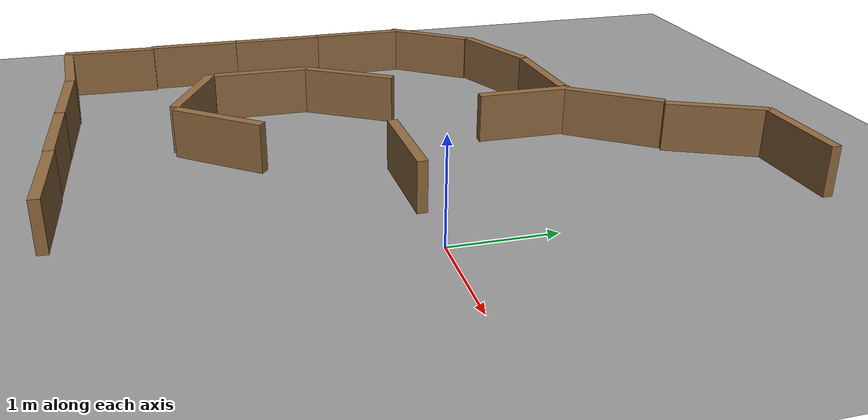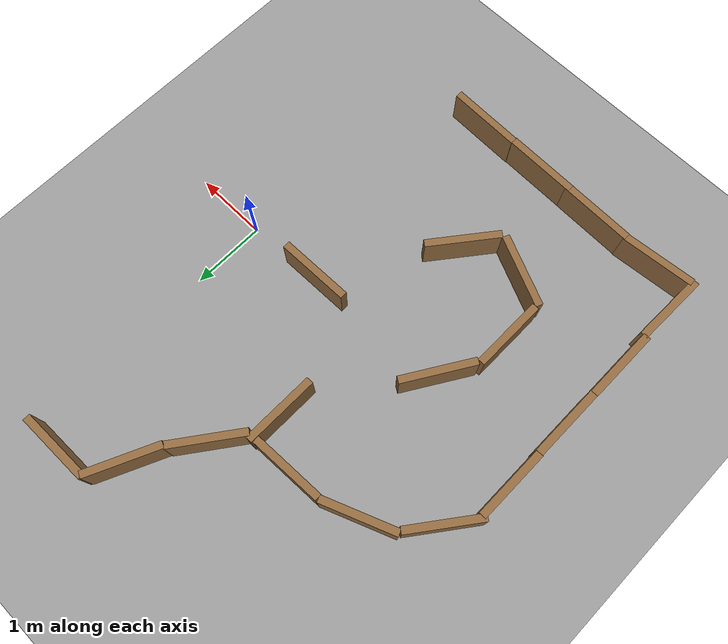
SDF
<sdf version="1.6">
 <world name="default">
  <model name="ground_plane_0">
   <static>1</static>
   <link name="link">
    <collision name="collision">
     <geometry><plane><normal>0 0 1</normal><size>100 100</size></plane></geometry>
     <surface><friction><ode><mu>100</mu><mu2>50</mu2></ode></friction></surface>
    </collision>
    <visual name="visual">
     <cast_shadows>0</cast_shadows>
     <geometry><plane><normal>0 0 1</normal><size>100 100</size></plane></geometry>
     <material>
      <script><uri>file://media/materials/scripts/gazebo.material</uri><name>Gazebo/Grey</name></script>
     </material>
    </visual>
    <velocity_decay><linear>0</linear><angular>0</angular></velocity_decay>
   </link>
   <pose>-1 0 0 0 -0 0</pose>
  </model>
  <model name="mascor_pappTown_wall_0">
   <pose>-3.38923 -1.10792 0 0 -0 0</pose>
   <static>1</static>
   <link name="link">
    <pose>0 0 0.25 0 -0 0</pose>
    <collision name="collision"><geometry><box><size>0.1 1 0.5</size></box></geometry></collision>
    <visual name="visual">
     <geometry><box><size>0.1 1 0.5</size></box></geometry>
     <material>
      <ambient>0.5 0.5 0.5 1</ambient>
      <diffuse>0.57 0.417 0.25 1</diffuse>
      <specular>0.1 0.1 0.1 1</specular>
      <emissive>0 0 0 0</emissive>
     </material>
    </visual>
    <velocity_decay><linear>0</linear><angular>0</angular></velocity_decay>
   </link>
  </model>
  <model name="mascor_pappTown_wall_3">
   <pose>-2.14455 -1.64991 0 0 0 -0.661636</pose>
   <static>1</static>
   <link name="link">
    <pose>0 0 0.25 0 -0 0</pose>
    <collision name="collision"><geometry><box><size>0.1 1 0.5</size></box></geometry></collision>
    <visual name="visual">
     <geometry><box><size>0.1 1 0.5</size></box></geometry>
     <material>
      <ambient>0.5 0.5 0.5 1</ambient>
      <diffuse>0.57 0.417 0.25 1</diffuse>
      <specular>0.1 0.1 0.1 1</specular>
      <emissive>0 0 0 0</emissive>
     </material>
    </visual>
    <velocity_decay><linear>0</linear><angular>0</angular></velocity_decay>
   </link>
  </model>
  <model name="mascor_pappTown_wall_8">
   <pose>-2.08917 1.48798 0 0 -0 0</pose>
   <static>1</static>
   <link name="link">
    <pose>0 0 0.25 0 -0 0</pose>
    <collision name="collision"><geometry><box><size>0.1 1 0.5</size></box></geometry></collision>
    <visual name="visual">
     <geometry><box><size>0.1 1 0.5</size></box></geometry>
     <material>
      <ambient>0.5 0.5 0.5 1</ambient>
      <diffuse>0.57 0.417 0.25 1</diffuse>
      <specular>0.1 0.1 0.1 1</specular>
      <emissive>0 0 0 0</emissive>
     </material>
    </visual>
    <velocity_decay><linear>0</linear><angular>0</angular></velocity_decay>
   </link>
  </model>
  <model name="mascor_pappTown_wall_10">
   <pose>-1.73538 2.3185 0.013799 0 -0 2.51064</pose>
   <static>1</static>
   <link name="link">
    <pose>0 0 0.25 0 -0 0</pose>
    <collision name="collision"><geometry><box><size>0.1 1 0.5</size></box></geometry></collision>
    <visual name="visual">
     <geometry><box><size>0.1 1 0.5</size></box></geometry>
     <material>
      <ambient>0.5 0.5 0.5 1</ambient>
      <diffuse>0.57 0.417 0.25 1</diffuse>
      <specular>0.1 0.1 0.1 1</specular>
      <emissive>0 0 0 0</emissive>
     </material>
    </visual>
    <velocity_decay><linear>0</linear><angular>0</angular></velocity_decay>
   </link>
  </model>
  <model name="mascor_pappTown_wall_16">
   <pose>-1.11387 -0.035453 0.008215 0 -0 1.59736</pose>
   <static>1</static>
   <link name="link">
    <pose>0 0 0.25 0 -0 0</pose>
    <collision name="collision"><geometry><box><size>0.1 1 0.5</size></box></geometry></collision>
    <visual name="visual">
     <geometry><box><size>0.1 1 0.5</size></box></geometry>
     <material>
      <ambient>0.5 0.5 0.5 1</ambient>
      <diffuse>0.57 0.417 0.25 1</diffuse>
      <specular>0.1 0.1 0.1 1</specular>
      <emissive>0 0 0 0</emissive>
     </material>
    </visual>
    <velocity_decay><linear>0</linear><angular>0</angular></velocity_decay>
   </link>
  </model>
  <model name="mascor_pappTown_wall_19">
   <pose>-3.09462 -0.17214 0.008101 0 -0 2.58907</pose>
   <static>1</static>
   <link name="link">
    <pose>0 0 0.25 0 -0 0</pose>
    <collision name="collision"><geometry><box><size>0.1 1 0.5</size></box></geometry></collision>
    <visual name="visual">
     <geometry><box><size>0.1 1 0.5</size></box></geometry>
     <material>
      <ambient>0.5 0.5 0.5 1</ambient>
      <diffuse>0.57 0.417 0.25 1</diffuse>
      <specular>0.1 0.1 0.1 1</specular>
      <emissive>0 0 0 0</emissive>
     </material>
    </visual>
    <velocity_decay><linear>0</linear><angular>0</angular></velocity_decay>
   </link>
  </model>
  <model name="mascor_pappTown_wall_35">
   <pose>-0.538394 3.62858 0 0 -0 1.59173</pose>
   <static>1</static>
   <link name="link">
    <pose>0 0 0.25 0 -0 0</pose>
    <collision name="collision"><geometry><box><size>0.1 1 0.5</size></box></geometry></collision>
    <visual name="visual">
     <geometry><box><size>0.1 1 0.5</size></box></geometry>
     <material>
      <ambient>0.5 0.5 0.5 1</ambient>
      <diffuse>0.57 0.417 0.25 1</diffuse>
      <specular>0.1 0.1 0.1 1</specular>
      <emissive>0 0 0 0</emissive>
     </material>
    </visual>
    <velocity_decay><linear>0</linear><angular>0</angular></velocity_decay>
   </link>
  </model>
  <model name="mascor_pappTown_wall_37">
   <pose>-1.21688 3.17387 0 0 0 -0.429197</pose>
   <static>1</static>
   <link name="link">
    <pose>0 0 0.25 0 -0 0</pose>
    <collision name="collision"><geometry><box><size>0.1 1 0.5</size></box></geometry></collision>
    <visual name="visual">
     <geometry><box><size>0.1 1 0.5</size></box></geometry>
     <material>
      <ambient>0.5 0.5 0.5 1</ambient>
      <diffuse>0.57 0.417 0.25 1</diffuse>
      <specular>0.1 0.1 0.1 1</specular>
      <emissive>0 0 0 0</emissive>
     </material>
    </visual>
    <velocity_decay><linear>0</linear><angular>0</angular></velocity_decay>
   </link>
  </model>
  <model name="mascor_pappTown_wall_40">
   <pose>-2.64508 1.89975 0 0 -0 1.61575</pose>
   <static>1</static>
   <link name="link">
    <pose>0 0 0.25 0 -0 0</pose>
    <collision name="collision"><geometry><box><size>0.1 1 0.5</size></box></geometry></collision>
    <visual name="visual">
     <geometry><box><size>0.1 1 0.5</size></box></geometry>
     <material>
      <ambient>0.5 0.5 0.5 1</ambient>
      <diffuse>0.57 0.417 0.25 1</diffuse>
      <specular>0.1 0.1 0.1 1</specular>
      <emissive>0 0 0 0</emissive>
     </material>
    </visual>
    <velocity_decay><linear>0</linear><angular>0</angular></velocity_decay>
   </link>
  </model>
  <model name="mascor_pappTown_wall_41">
   <pose>-3.61597 1.69455 0 0 0 -1.18272</pose>
   <static>1</static>
   <link name="link">
    <pose>0 0 0.25 0 -0 0</pose>
    <collision name="collision"><geometry><box><size>0.1 1 0.5</size></box></geometry></collision>
    <visual name="visual">
     <geometry><box><size>0.1 1 0.5</size></box></geometry>
     <material>
      <ambient>0.5 0.5 0.5 1</ambient>
      <diffuse>0.57 0.417 0.25 1</diffuse>
      <specular>0.1 0.1 0.1 1</specular>
      <emissive>0 0 0 0</emissive>
     </material>
    </visual>
    <velocity_decay><linear>0</linear><angular>0</angular></velocity_decay>
   </link>
  </model>
  <model name="mascor_pappTown_wall_42">
   <pose>-2.95823 -1.84805 0 0 -0 1.1539</pose>
   <static>1</static>
   <link name="link">
    <pose>0 0 0.25 0 -0 0</pose>
    <collision name="collision"><geometry><box><size>0.1 1 0.5</size></box></geometry></collision>
    <visual name="visual">
     <geometry><box><size>0.1 1 0.5</size></box></geometry>
     <material>
      <ambient>0.5 0.5 0.5 1</ambient>
      <diffuse>0.57 0.417 0.25 1</diffuse>
      <specular>0.1 0.1 0.1 1</specular>
      <emissive>0 0 0 0</emissive>
     </material>
    </visual>
    <velocity_decay><linear>0</linear><angular>0</angular></velocity_decay>
   </link>
  </model>
  <model name="mascor_pappTown_wall_43">
   <pose>-4.36547 1.08024 0 0 0 -0.644031</pose>
   <static>1</static>
   <link name="link">
    <pose>0 0 0.25 0 -0 0</pose>
    <collision name="collision"><geometry><box><size>0.1 1 0.5</size></box></geometry></collision>
    <visual name="visual">
     <geometry><box><size>0.1 1 0.5</size></box></geometry>
     <material>
      <ambient>0.5 0.5 0.5 1</ambient>
      <diffuse>0.57 0.417 0.25 1</diffuse>
      <specular>0.1 0.1 0.1 1</specular>
      <emissive>0 0 0 0</emissive>
     </material>
    </visual>
    <velocity_decay><linear>0</linear><angular>0</angular></velocity_decay>
   </link>
  </model>
  <model name="mascor_pappTown_wall_44">
   <pose>-4.61034 0.21432 0 0 -0 0</pose>
   <static>1</static>
   <link name="link">
    <pose>0 0 0.25 0 -0 0</pose>
    <collision name="collision"><geometry><box><size>0.1 1 0.5</size></box></geometry></collision>
    <visual name="visual">
     <geometry><box><size>0.1 1 0.5</size></box></geometry>
     <material>
      <ambient>0.5 0.5 0.5 1</ambient>
      <diffuse>0.57 0.417 0.25 1</diffuse>
      <specular>0.1 0.1 0.1 1</specular>
      <emissive>0 0 0 0</emissive>
     </material>
    </visual>
    <velocity_decay><linear>0</linear><angular>0</angular></velocity_decay>
   </link>
  </model>
  <model name="mascor_pappTown_wall_45">
   <pose>-4.60138 -0.778103 0 0 -0 0</pose>
   <static>1</static>
   <link name="link">
    <pose>0 0 0.25 0 -0 0</pose>
    <collision name="collision"><geometry><box><size>0.1 1 0.5</size></box></geometry></collision>
    <visual name="visual">
     <geometry><box><size>0.1 1 0.5</size></box></geometry>
     <material>
      <ambient>0.5 0.5 0.5 1</ambient>
      <diffuse>0.57 0.417 0.25 1</diffuse>
      <specular>0.1 0.1 0.1 1</specular>
      <emissive>0 0 0 0</emissive>
     </material>
    </visual>
    <velocity_decay><linear>0</linear><angular>0</angular></velocity_decay>
   </link>
  </model>
  <model name="mascor_pappTown_wall_46">
   <pose>-4.60548 -1.76727 0 0 -0 0</pose>
   <static>1</static>
   <link name="link">
    <pose>0 0 0.25 0 -0 0</pose>
    <collision name="collision"><geometry><box><size>0.1 1 0.5</size></box></geometry></collision>
    <visual name="visual">
     <geometry><box><size>0.1 1 0.5</size></box></geometry>
     <material>
      <ambient>0.5 0.5 0.5 1</ambient>
      <diffuse>0.57 0.417 0.25 1</diffuse>
      <specular>0.1 0.1 0.1 1</specular>
      <emissive>0 0 0 0</emissive>
     </material>
    </visual>
    <velocity_decay><linear>0</linear><angular>0</angular></velocity_decay>
   </link>
  </model>
  <model name="mascor_pappTown_wall_47">
   <pose>-4.5802 -2.74498 0 0 0 -0.024574</pose>
   <static>1</static>
   <link name="link">
    <pose>0 0 0.25 0 -0 0</pose>
    <collision name="collision"><geometry><box><size>0.1 1 0.5</size></box></geometry></collision>
    <visual name="visual">
     <geometry><box><size>0.1 1 0.5</size></box></geometry>
     <material>
      <ambient>0.5 0.5 0.5 1</ambient>
      <diffuse>0.57 0.417 0.25 1</diffuse>
      <specular>0.1 0.1 0.1 1</specular>
      <emissive>0 0 0 0</emissive>
     </material>
    </visual>
    <velocity_decay><linear>0</linear><angular>0</angular></velocity_decay>
   </link>
  </model>
  <model name="mascor_pappTown_wall_48">
   <pose>-4.07159 -3.15831 0 0 -0 1.66857</pose>
   <static>1</static>
   <link name="link">
    <pose>0 0 0.25 0 -0 0</pose>
    <collision name="collision"><geometry><box><size>0.1 1 0.5</size></box></geometry></collision>
    <visual name="visual">
     <geometry><box><size>0.1 1 0.5</size></box></geometry>
     <material>
      <ambient>0.5 0.5 0.5 1</ambient>
      <diffuse>0.57 0.417 0.25 1</diffuse>
      <specular>0.1 0.1 0.1 1</specular>
      <emissive>0 0 0 0</emissive>
     </material>
    </visual>
    <velocity_decay><linear>0</linear><angular>0</angular></velocity_decay>
   </link>
  </model>
  <model name="mascor_pappTown_wall_51">
   <pose>-3.09949 -3.12678 0 0 -0 1.55227</pose>
   <static>1</static>
   <link name="link">
    <pose>0 0 0.25 0 -0 0</pose>
    <collision name="collision"><geometry><box><size>0.1 1 0.5</size></box></geometry></collision>
    <visual name="visual">
     <geometry><box><size>0.1 1 0.5</size></box></geometry>
     <material>
      <ambient>0.5 0.5 0.5 1</ambient>
      <diffuse>0.57 0.417 0.25 1</diffuse>
      <specular>0.1 0.1 0.1 1</specular>
      <emissive>0 0 0 0</emissive>
     </material>
    </visual>
    <velocity_decay><linear>0</linear><angular>0</angular></velocity_decay>
   </link>
  </model>
  <model name="mascor_pappTown_wall_52">
   <pose>-1.16979 -3.15624 0 0 -0 1.55039</pose>
   <static>1</static>
   <link name="link">
    <pose>0 0 0.25 0 -0 0</pose>
    <collision name="collision"><geometry><box><size>0.1 1 0.5</size></box></geometry></collision>
    <visual name="visual">
     <geometry><box><size>0.1 1 0.5</size></box></geometry>
     <material>
      <ambient>0.5 0.5 0.5 1</ambient>
      <diffuse>0.57 0.417 0.25 1</diffuse>
      <specular>0.1 0.1 0.1 1</specular>
      <emissive>0 0 0 0</emissive>
     </material>
    </visual>
    <velocity_decay><linear>0</linear><angular>0</angular></velocity_decay>
   </link>
  </model>
  <model name="mascor_pappTown_wall_53">
   <pose>-2.15419 -3.14502 0 0 0 -1.58654</pose>
   <static>1</static>
   <link name="link">
    <pose>0 0 0.25 0 -0 0</pose>
    <collision name="collision"><geometry><box><size>0.1 1 0.5</size></box></geometry></collision>
    <visual name="visual">
     <geometry><box><size>0.1 1 0.5</size></box></geometry>
     <material>
      <ambient>0.5 0.5 0.5 1</ambient>
      <diffuse>0.57 0.417 0.25 1</diffuse>
      <specular>0.1 0.1 0.1 1</specular>
      <emissive>0 0 0 0</emissive>
     </material>
    </visual>
    <velocity_decay><linear>0</linear><angular>0</angular></velocity_decay>
   </link>
  </model>
 </world>
</sdf>
